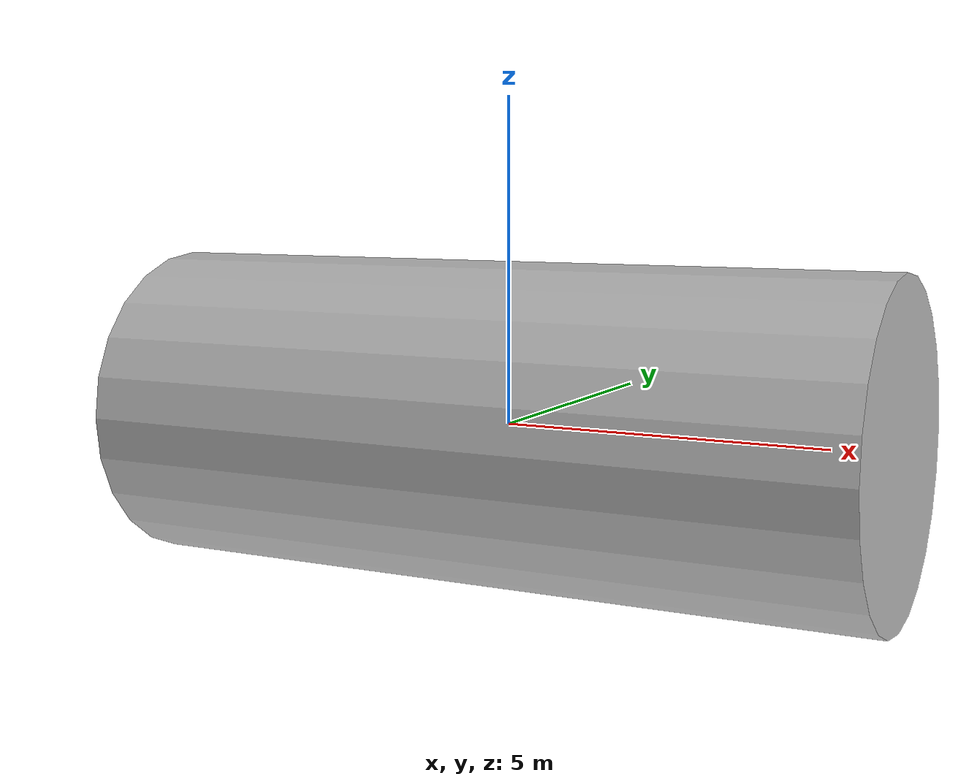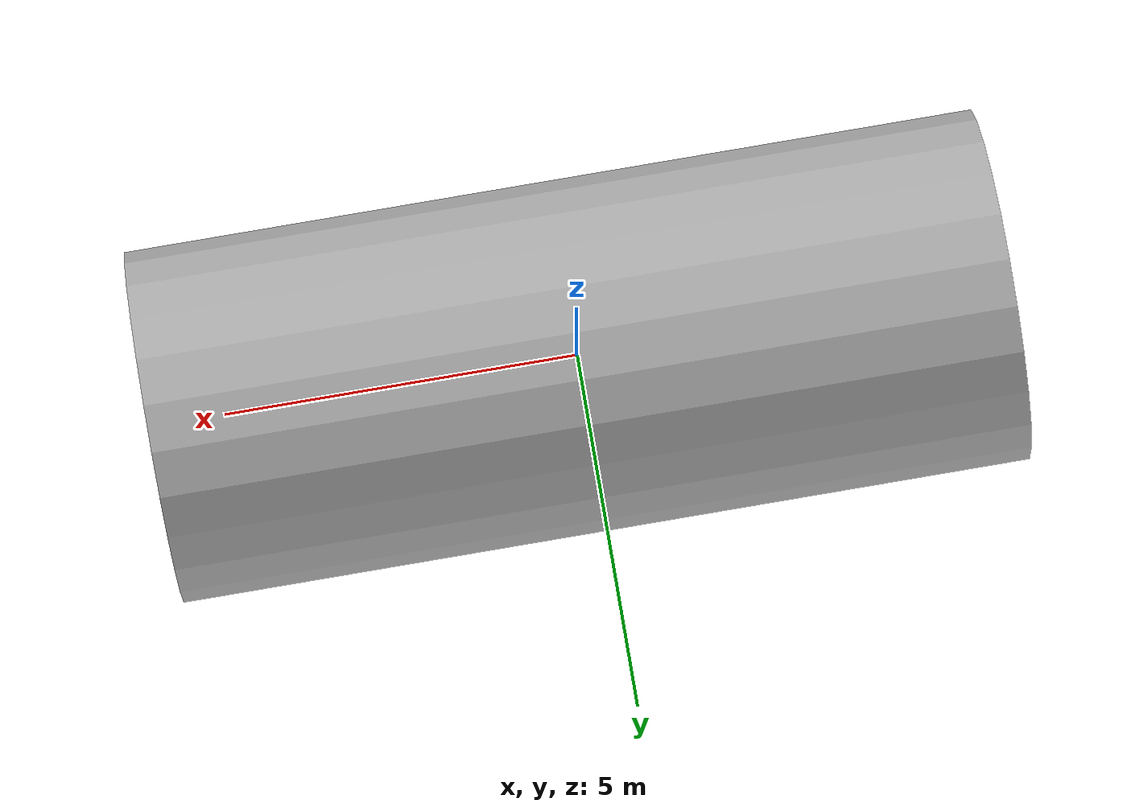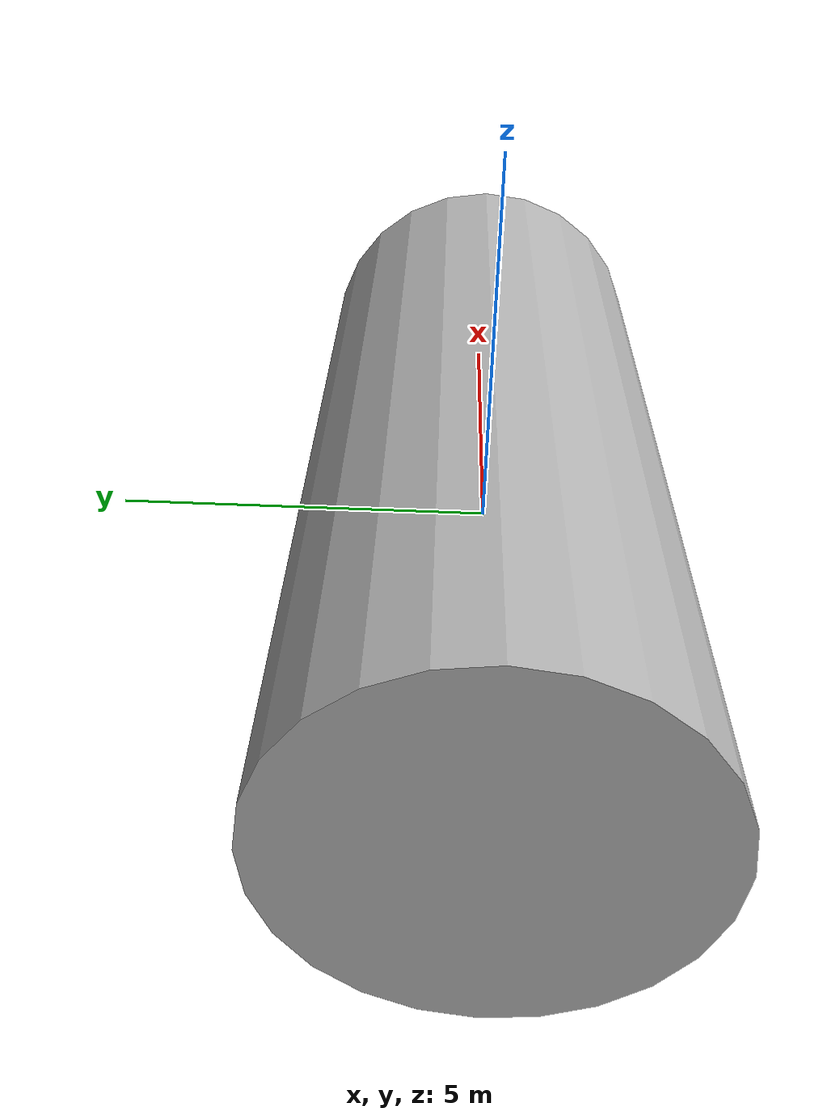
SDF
<?xml version="1.0"?>
<sdf version="1.6">
  <model name="spacestation_module_typeA">
    <link name="base_link">
      <inertial>
        <mass>12000.0</mass>
        <inertia>
          <ixx>1200.0</ixx>
          <ixy>0.0</ixy>
          <ixz>0.0</ixz>
          <iyy>300.0</iyy>
          <iyz>0.0</iyz>
          <izz>300.0</izz>
        </inertia>
      </inertial>
      <collision name="collision">
        <pose>0 0 0 0 1.5708 0</pose>
        <geometry>
          <cylinder>
            <radius>2.5</radius>
            <length>12.0</length>
          </cylinder>
        </geometry>
      </collision>
      <visual name="visual">
        <pose>0 0 0 0 1.5708 0</pose>
        <geometry>
          <cylinder>
            <radius>2.5</radius>
            <length>12.0</length>
          </cylinder>
        </geometry>
      </visual>
    </link>

    <!-- Definition of thruster links -->
    <link name="thruster_x_positive_1">
      <visual name="visual">
        <pose>0 0 0 0 1.5708 0</pose>
        <geometry>
          <cylinder>
            <radius>0.2</radius>
            <length>0.3</length>
          </cylinder>
        </geometry>
      </visual>
    </link>
    <link name="thruster_x_positive_2">
      <visual name="visual">
        <pose>0 0 0 0 1.5708 0</pose>
        <geometry>
          <cylinder>
            <radius>0.2</radius>
            <length>0.3</length>
          </cylinder>
        </geometry>
      </visual>
    </link>
    <link name="thruster_x_negative_1">
      <visual name="visual">
        <pose>0 0 0 0 1.5708 0</pose>
        <geometry>
          <cylinder>
            <radius>0.2</radius>
            <length>0.3</length>
          </cylinder>
        </geometry>
      </visual>
    </link>
    <link name="thruster_x_negative_2">
      <visual name="visual">
        <pose>0 0 0 0 1.5708 0</pose>
        <geometry>
          <cylinder>
            <radius>0.2</radius>
            <length>0.3</length>
          </cylinder>
        </geometry>
      </visual>
    </link>
    <link name="thruster_y_positive_1">
      <visual name="visual">
        <pose>0 0 0 0 1.5708 0</pose>
        <geometry>
          <cylinder>
            <radius>0.2</radius>
            <length>0.3</length>
          </cylinder>
        </geometry>
      </visual>
    </link>
    <link name="thruster_y_positive_2">
      <visual name="visual">
        <pose>0 0 0 0 1.5708 0</pose>
        <geometry>
          <cylinder>
            <radius>0.2</radius>
            <length>0.3</length>
          </cylinder>
        </geometry>
      </visual>
    </link>
    <link name="thruster_y_negative_1">
      <visual name="visual">
        <pose>0 0 0 0 1.5708 0</pose>
        <geometry>
          <cylinder>
            <radius>0.2</radius>
            <length>0.3</length>
          </cylinder>
        </geometry>
      </visual>
    </link>
    <link name="thruster_y_negative_2">
      <visual name="visual">
        <pose>0 0 0 0 1.5708 0</pose>
        <geometry>
          <cylinder>
            <radius>0.2</radius>
            <length>0.3</length>
          </cylinder>
        </geometry>
      </visual>
    </link>
    <link name="thruster_z_positive_1">
      <visual name="visual">
        <pose>0 0 0 0 1.5708 0</pose>
        <geometry>
          <cylinder>
            <radius>0.2</radius>
            <length>0.3</length>
          </cylinder>
        </geometry>
      </visual>
    </link>
    <link name="thruster_z_positive_2">
      <visual name="visual">
        <pose>0 0 0 0 1.5708 0</pose>
        <geometry>
          <cylinder>
            <radius>0.2</radius>
            <length>0.3</length>
          </cylinder>
        </geometry>
      </visual>
    </link>
    <link name="thruster_z_negative_1">
      <visual name="visual">
        <pose>0 0 0 0 1.5708 0</pose>
        <geometry>
          <cylinder>
            <radius>0.2</radius>
            <length>0.3</length>
          </cylinder>
        </geometry>
      </visual>
    </link>
    <link name="thruster_z_negative_2">
      <visual name="visual">
        <pose>0 0 0 0 1.5708 0</pose>
        <geometry>
          <cylinder>
            <radius>0.2</radius>
            <length>0.3</length>
          </cylinder>
        </geometry>
      </visual>
    </link>

    <!-- Definition of joints and actuators for thrusters -->
    <joint name="thruster_x_positive_joint_1" type="fixed">
      <parent>base_link</parent>
      <child>thruster_x_positive_1</child>
      <pose>-5.7 2.7 0 0 0 0</pose>
    </joint>
    <joint name="thruster_x_positive_joint_2" type="fixed">
      <parent>base_link</parent>
      <child>thruster_x_positive_2</child>
      <pose>-5.7 -2.7 0 0 0 0</pose>
    </joint>
    <joint name="thruster_x_negative_joint_1" type="fixed">
      <parent>base_link</parent>
      <child>thruster_x_negative_1</child>
      <pose>5.7 2.7 0 0 0 3.1459</pose>
    </joint>
    <joint name="thruster_x_negative_joint_2" type="fixed">
      <parent>base_link</parent>
      <child>thruster_x_negative_2</child>
      <pose>5.7 -2.7 0 0 0 3.1459</pose>
    </joint>
    <joint name="thruster_y_positive_joint_1" type="fixed">
      <parent>base_link</parent>
      <child>thruster_y_positive_1</child>
      <pose>0 0.3 2.6 0 0 1.5708</pose>
    </joint>
    <joint name="thruster_y_positive_joint_2" type="fixed">
      <parent>base_link</parent>
      <child>thruster_y_positive_2</child>
      <pose>0 -0.3 2.6 0 0 1.5708</pose>
    </joint>
    <joint name="thruster_y_negative_joint_1" type="fixed">
      <parent>base_link</parent>
      <child>thruster_y_negative_1</child>
      <pose>0 0.3 -2.6 0 0 -1.5708</pose>
    </joint>
    <joint name="thruster_y_negative_joint_2" type="fixed">
      <parent>base_link</parent>
      <child>thruster_y_negative_2</child>
      <pose>0 -0.3 -2.6 0 0 -1.5708</pose>
    </joint>
    <joint name="thruster_z_positive_joint_1" type="fixed">
      <parent>base_link</parent>
      <child>thruster_z_positive_1</child>
      <pose>5.8 0 2.7 0 1.5708 0</pose>
    </joint>
    <joint name="thruster_z_positive_joint_2" type="fixed">
      <parent>base_link</parent>
      <child>thruster_z_positive_2</child>
      <pose>-5.8 0 2.7 0 1.5708 0</pose>
    </joint>
    <joint name="thruster_z_negative_joint_1" type="fixed">
      <parent>base_link</parent>
      <child>thruster_z_negative_1</child>
      <pose>5.8 0 -2.7 0 -1.5708 0</pose>
    </joint>
    <joint name="thruster_z_negative_joint_2" type="fixed">
      <parent>base_link</parent>
      <child>thruster_z_negative_2</child>
      <pose>-5.8 0 -2.7 0 -1.5708 0</pose>
    </joint>

    <!-- Actuator definition -->
    <actuator>
      <thruster>
        <force>30.0</force>
      </thruster>
    </actuator>

    <!-- Definition of docking ports -->
    <link name="docking_port_x_positive">
      <collision name="collision_docking_port_x_positive">
        <pose>0 0 0 0 1.5708 0</pose>
        <geometry>
          <cylinder>
            <radius>1.5</radius>
            <length>0.4</length>
          </cylinder>
        </geometry>
      </collision>
      <visual name="visual_docking_port_x_positive">
        <pose>0 0 0 0 1.5708 0</pose>
        <geometry>
          <cylinder>
            <radius>1.5</radius>
            <length>0.4</length>
          </cylinder>
        </geometry>
      </visual>
    </link>
    <link name="docking_port_y_positive">
      <collision name="collision_docking_port_y_positive">
        <pose>0 0 0 0 1.5708 0</pose>
        <geometry>
          <cylinder>
            <radius>1.5</radius>
            <length>0.4</length>
          </cylinder>
        </geometry>
      </collision>
      <visual name="visual_docking_port_y_positive">
        <pose>0 0 0 0 1.5708 0</pose>
        <geometry>
          <cylinder>
            <radius>1.5</radius>
            <length>0.4</length>
          </cylinder>
        </geometry>
      </visual>
    </link>
    <link name="docking_port_y_negative">
      <collision name="collision_docking_port_y_negative">
        <pose>0 0 0 0 1.5708 0</pose>
        <geometry>
          <cylinder>
            <radius>1.5</radius>
            <length>0.4</length>
          </cylinder>
        </geometry>
      </collision>
      <visual name="visual_docking_port_y_negative">
        <pose>0 0 0 0 1.5708 0</pose>
        <geometry>
          <cylinder>
            <radius>1.5</radius>
            <length>0.4</length>
          </cylinder>
        </geometry>
      </visual>
    </link>
    <joint name="docking_port_x_positive_joint" type="fixed">
      <parent>base_link</parent>
      <child>docking_port_x_positive</child>
      <pose>6.5 0 0 0 0 0</pose>
    </joint>
    <joint name="docking_port_y_positive_joint" type="fixed">
      <parent>base_link</parent>
      <child>docking_port_y_positive</child>
      <pose>0 2.5 0 0 0 1.5708</pose>
    </joint>
    <joint name="docking_port_y_negative_joint" type="fixed">
      <parent>base_link</parent>
      <child>docking_port_y_negative</child>
      <pose>0 -2.5 0 0 0 -1.5708</pose>
    </joint>
  </model>
</sdf>
